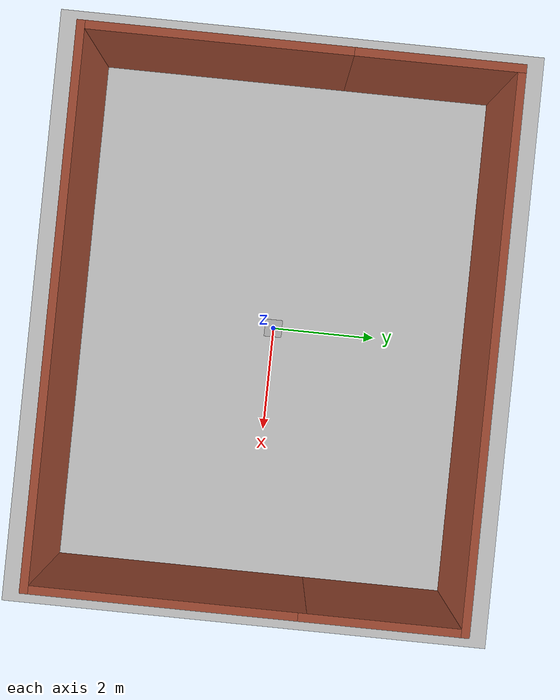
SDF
<sdf version="1.7">
 <world name="default">
  <light name="sun" type="directional">
   <pose>0 0 10 0 -0 0</pose>
   <diffuse>0.8 0.8 0.8 1</diffuse>
   <specular>0.2 0.2 0.2 1</specular>
   <attenuation>
    <range>1000</range>
    <constant>0.9</constant>
    <linear>0.01</linear>
    <quadratic>0.001</quadratic>
   </attenuation>
   <direction>-0.5 0.1 -0.9</direction>
   <spot><inner_angle>0</inner_angle><outer_angle>0</outer_angle><falloff>0</falloff></spot>
  </light>
  <model name="ground_plane">
   <pose>0 0 0 0 -0 1.57</pose>
   <static>1</static>
   <link name="link">
    <collision name="collision">
     <geometry><plane><normal>0 0 1</normal><size>100 100</size></plane></geometry>
     <surface>
      <contact><collide_bitmask>65535</collide_bitmask></contact>
      <friction><ode><mu>100</mu><mu2>50</mu2></ode></friction>
     </surface>
    </collision>
    <visual name="visual">
     <cast_shadows>0</cast_shadows>
     <geometry><plane><normal>0 0 1</normal><size>100 100</size></plane></geometry>
     <material>
      <script><uri>file://media/materials/scripts/gazebo.material</uri><name>Gazebo/Grey</name></script>
     </material>
    </visual>
   </link>
  </model>
  <gravity>0 0 -9.8</gravity>
  <magnetic_field>6e-06 2.3e-05 -4.2e-05</magnetic_field>
  <atmosphere type="adiabatic"/>
  <physics type="ode">
   <max_step_size>0.001</max_step_size>
   <real_time_factor>1</real_time_factor>
   <real_time_update_rate>1000</real_time_update_rate>
  </physics>
  <scene><ambient>0.4 0.4 0.4 1</ambient><background>0.7 0.7 0.7 1</background><shadows>1</shadows></scene>
  <spherical_coordinates>
   <surface_model>EARTH_WGS84</surface_model>
   <latitude_deg>0</latitude_deg>
   <longitude_deg>0</longitude_deg>
   <elevation>0</elevation>
   <heading_deg>0</heading_deg>
  </spherical_coordinates>
  <model name="Puzzlebot_sennaria1">
   <pose>0.01457 -0.00183 0 0 -0 0</pose>
   <link name="Wall_10">
    <collision name="Wall_10_Collision">
     <geometry><box><size>3 0.15 2.5</size></box></geometry>
     <pose>0 0 1.25 0 -0 0</pose>
    </collision>
    <visual name="Wall_10_Visual">
     <pose>0 0 1.25 0 -0 0</pose>
     <geometry><box><size>3 0.15 2.5</size></box></geometry>
     <material>
      <script><uri>file://media/materials/scripts/gazebo.material</uri><name>Gazebo/Bricks</name></script>
      <ambient>1 1 1 1</ambient>
     </material>
     <meta><layer>0</layer></meta>
    </visual>
    <pose>-4.925 2.425 0 0 -0 1.5708</pose>
   </link>
   <link name="Wall_11">
    <collision name="Wall_11_Collision">
     <geometry><box><size>10 0.15 2.5</size></box></geometry>
     <pose>0 0 1.25 0 -0 0</pose>
    </collision>
    <visual name="Wall_11_Visual">
     <pose>0 0 1.25 0 -0 0</pose>
     <geometry><box><size>10 0.15 2.5</size></box></geometry>
     <material>
      <script><uri>file://media/materials/scripts/gazebo.material</uri><name>Gazebo/Bricks</name></script>
      <ambient>1 1 1 1</ambient>
     </material>
     <meta><layer>0</layer></meta>
    </visual>
    <pose>-0 3.85 0 0 -0 0</pose>
   </link>
   <link name="Wall_12">
    <collision name="Wall_12_Collision">
     <geometry><box><size>3 0.15 2.5</size></box></geometry>
     <pose>0 0 1.25 0 -0 0</pose>
    </collision>
    <visual name="Wall_12_Visual">
     <pose>0 0 1.25 0 -0 0</pose>
     <geometry><box><size>3 0.15 2.5</size></box></geometry>
     <material>
      <script><uri>file://media/materials/scripts/gazebo.material</uri><name>Gazebo/Bricks</name></script>
      <ambient>1 1 1 1</ambient>
     </material>
     <meta><layer>0</layer></meta>
    </visual>
    <pose>4.925 2.425 0 0 -0 -1.5708</pose>
   </link>
   <link name="Wall_14">
    <collision name="Wall_14_Collision">
     <geometry><box><size>10 0.15 2.5</size></box></geometry>
     <pose>0 0 1.25 0 -0 0</pose>
    </collision>
    <visual name="Wall_14_Visual">
     <pose>0 0 1.25 0 -0 0</pose>
     <geometry><box><size>10 0.15 2.5</size></box></geometry>
     <material>
      <script><uri>file://media/materials/scripts/gazebo.material</uri><name>Gazebo/Bricks</name></script>
      <ambient>1 1 1 1</ambient>
     </material>
     <meta><layer>0</layer></meta>
    </visual>
    <pose>-0 -3.85 0 0 -0 0</pose>
   </link>
   <link name="Wall_15">
    <collision name="Wall_15_Collision">
     <geometry><box><size>5 0.15 2.5</size></box></geometry>
     <pose>0 0 1.25 0 -0 0</pose>
    </collision>
    <visual name="Wall_15_Visual">
     <pose>0 0 1.25 0 -0 0</pose>
     <geometry><box><size>5 0.15 2.5</size></box></geometry>
     <material>
      <script><uri>file://media/materials/scripts/gazebo.material</uri><name>Gazebo/Bricks</name></script>
      <ambient>1 1 1 1</ambient>
     </material>
     <meta><layer>0</layer></meta>
    </visual>
    <pose>4.925 -1.425 0 0 -0 1.5708</pose>
   </link>
   <link name="Wall_3">
    <collision name="Wall_3_Collision">
     <geometry><box><size>5 0.15 2.5</size></box></geometry>
     <pose>0 0 1.25 0 -0 0</pose>
    </collision>
    <visual name="Wall_3_Visual">
     <pose>0 0 1.25 0 -0 0</pose>
     <geometry><box><size>5 0.15 2.5</size></box></geometry>
     <material>
      <script><uri>file://media/materials/scripts/gazebo.material</uri><name>Gazebo/Bricks</name></script>
      <ambient>1 1 1 1</ambient>
     </material>
     <meta><layer>0</layer></meta>
    </visual>
    <pose>-4.925 -1.425 0 0 -0 1.5708</pose>
   </link>
   <static>1</static>
  </model>
  <model name="aruco_1">
   <static>1</static>
   <link name="marker_1_link">
    <visual name="visual_marker_1">
     <cast_shadows>0</cast_shadows>
     <geometry><box><size>0.342453 0.342453 0.001</size></box></geometry>
     <material>
      <script>
       <uri>model://aruco_1/materials/scripts</uri>
       <uri>model://aruco_1/materials/textures</uri>
       <name>aruco/marker_1</name>
      </script>
     </material>
    </visual>
   </link>
  </model>
  <model name="aruco_2">
   <static>1</static>
   <link name="marker_2_link">
    <visual name="visual_marker_2">
     <cast_shadows>0</cast_shadows>
     <geometry><box><size>0.342453 0.342453 0.001</size></box></geometry>
     <material>
      <script>
       <uri>model://aruco_2/materials/scripts</uri>
       <uri>model://aruco_2/materials/textures</uri>
       <name>aruco/marker_2</name>
      </script>
     </material>
    </visual>
   </link>
  </model>
  <model name="aruco_3">
   <static>1</static>
   <link name="marker_3_link">
    <visual name="visual_marker_3">
     <cast_shadows>0</cast_shadows>
     <geometry><box><size>0.342453 0.342453 0.001</size></box></geometry>
     <material>
      <script>
       <uri>model://aruco_3/materials/scripts</uri>
       <uri>model://aruco_3/materials/textures</uri>
       <name>aruco/marker_3</name>
      </script>
     </material>
    </visual>
   </link>
  </model>
  <model name="aruco_4">
   <static>1</static>
   <link name="marker_4_link">
    <visual name="visual_marker_4">
     <cast_shadows>0</cast_shadows>
     <geometry><box><size>0.342453 0.342453 0.001</size></box></geometry>
     <material>
      <script>
       <uri>model://aruco_4/materials/scripts</uri>
       <uri>model://aruco_4/materials/textures</uri>
       <name>aruco/marker_4</name>
      </script>
     </material>
    </visual>
   </link>
  </model>
  <model name="aruco_5">
   <static>1</static>
   <link name="marker_5_link">
    <visual name="visual_marker_5">
     <cast_shadows>0</cast_shadows>
     <geometry><box><size>0.342453 0.342453 0.001</size></box></geometry>
     <material>
      <script>
       <uri>model://aruco_5/materials/scripts</uri>
       <uri>model://aruco_5/materials/textures</uri>
       <name>aruco/marker_5</name>
      </script>
     </material>
    </visual>
   </link>
  </model>
  <model name="aruco_6">
   <static>1</static>
   <link name="marker_6_link">
    <visual name="visual_marker_6">
     <cast_shadows>0</cast_shadows>
     <geometry><box><size>0.342453 0.342453 0.001</size></box></geometry>
     <material>
      <script>
       <uri>model://aruco_6/materials/scripts</uri>
       <uri>model://aruco_6/materials/textures</uri>
       <name>aruco/marker_6</name>
      </script>
     </material>
    </visual>
   </link>
  </model>
  <model name="aruco_7">
   <static>1</static>
   <link name="marker_7_link">
    <visual name="visual_marker_7">
     <cast_shadows>0</cast_shadows>
     <geometry><box><size>0.342453 0.342453 0.001</size></box></geometry>
     <material>
      <script>
       <uri>model://aruco_7/materials/scripts</uri>
       <uri>model://aruco_7/materials/textures</uri>
       <name>aruco/marker_7</name>
      </script>
     </material>
    </visual>
   </link>
  </model>
  <model name="aruco_8">
   <static>1</static>
   <link name="marker_8_link">
    <visual name="visual_marker_8">
     <cast_shadows>0</cast_shadows>
     <geometry><box><size>0.342453 0.342453 0.001</size></box></geometry>
     <material>
      <script>
       <uri>model://aruco_8/materials/scripts</uri>
       <uri>model://aruco_8/materials/textures</uri>
       <name>aruco/marker_8</name>
      </script>
     </material>
    </visual>
   </link>
  </model>
  <model name="aruco_9">
   <static>1</static>
   <link name="marker_9_link">
    <visual name="visual_marker_9">
     <cast_shadows>0</cast_shadows>
     <geometry><box><size>0.342453 0.342453 0.001</size></box></geometry>
     <material>
      <script>
       <uri>model://aruco_9/materials/scripts</uri>
       <uri>model://aruco_9/materials/textures</uri>
       <name>aruco/marker_9</name>
      </script>
     </material>
    </visual>
   </link>
  </model>
  <model name="aruco_10">
   <static>1</static>
   <link name="marker_10_link">
    <visual name="visual_marker_10">
     <cast_shadows>0</cast_shadows>
     <geometry><box><size>0.342453 0.342453 0.001</size></box></geometry>
     <material>
      <script>
       <uri>model://aruco_10/materials/scripts</uri>
       <uri>model://aruco_10/materials/textures</uri>
       <name>aruco/marker_10</name>
      </script>
     </material>
    </visual>
   </link>
  </model>
  <model name="aruco_11">
   <static>1</static>
   <link name="marker_11_link">
    <visual name="visual_marker_11">
     <cast_shadows>0</cast_shadows>
     <geometry><box><size>0.342453 0.342453 0.001</size></box></geometry>
     <material>
      <script>
       <uri>model://aruco_11/materials/scripts</uri>
       <uri>model://aruco_11/materials/textures</uri>
       <name>aruco/marker_11</name>
      </script>
     </material>
    </visual>
   </link>
  </model>
  <model name="aruco_12">
   <static>1</static>
   <link name="marker_12_link">
    <visual name="visual_marker_12">
     <cast_shadows>0</cast_shadows>
     <geometry><box><size>0.342453 0.342453 0.001</size></box></geometry>
     <material>
      <script>
       <uri>model://aruco_12/materials/scripts</uri>
       <uri>model://aruco_12/materials/textures</uri>
       <name>aruco/marker_12</name>
      </script>
     </material>
    </visual>
   </link>
  </model>
  <model name="aruco_13">
   <static>1</static>
   <link name="marker_13_link">
    <visual name="visual_marker_13">
     <cast_shadows>0</cast_shadows>
     <geometry><box><size>0.342453 0.342453 0.001</size></box></geometry>
     <material>
      <script>
       <uri>model://aruco_13/materials/scripts</uri>
       <uri>model://aruco_13/materials/textures</uri>
       <name>aruco/marker_13</name>
      </script>
     </material>
    </visual>
   </link>
  </model>
  <model name="aruco_14">
   <static>1</static>
   <link name="marker_14_link">
    <visual name="visual_marker_14">
     <cast_shadows>0</cast_shadows>
     <geometry><box><size>0.342453 0.342453 0.001</size></box></geometry>
     <material>
      <script>
       <uri>model://aruco_14/materials/scripts</uri>
       <uri>model://aruco_14/materials/textures</uri>
       <name>aruco/marker_14</name>
      </script>
     </material>
    </visual>
   </link>
  </model>
  <model name="aruco_15">
   <static>1</static>
   <link name="marker_15_link">
    <visual name="visual_marker_15">
     <cast_shadows>0</cast_shadows>
     <geometry><box><size>0.342453 0.342453 0.001</size></box></geometry>
     <material>
      <script>
       <uri>model://aruco_15/materials/scripts</uri>
       <uri>model://aruco_15/materials/textures</uri>
       <name>aruco/marker_15</name>
      </script>
     </material>
    </visual>
   </link>
  </model>
  <model name="aruco_16">
   <static>1</static>
   <link name="marker_16_link">
    <visual name="visual_marker_16">
     <cast_shadows>0</cast_shadows>
     <geometry><box><size>0.342453 0.342453 0.001</size></box></geometry>
     <material>
      <script>
       <uri>model://aruco_16/materials/scripts</uri>
       <uri>model://aruco_16/materials/textures</uri>
       <name>aruco/marker_16</name>
      </script>
     </material>
    </visual>
   </link>
  </model>
  <model name="aruco_17">
   <static>1</static>
   <link name="marker_17_link">
    <visual name="visual_marker_17">
     <cast_shadows>0</cast_shadows>
     <geometry><box><size>0.342453 0.342453 0.001</size></box></geometry>
     <material>
      <script>
       <uri>model://aruco_17/materials/scripts</uri>
       <uri>model://aruco_17/materials/textures</uri>
       <name>aruco/marker_17</name>
      </script>
     </material>
    </visual>
   </link>
  </model>
  <model name="aruco_18">
   <static>1</static>
   <link name="marker_18_link">
    <visual name="visual_marker_18">
     <cast_shadows>0</cast_shadows>
     <geometry><box><size>0.342453 0.342453 0.001</size></box></geometry>
     <material>
      <script>
       <uri>model://aruco_18/materials/scripts</uri>
       <uri>model://aruco_18/materials/textures</uri>
       <name>aruco/marker_18</name>
      </script>
     </material>
    </visual>
   </link>
  </model>
  <model name="aruco_19">
   <static>1</static>
   <link name="marker_19_link">
    <visual name="visual_marker_19">
     <cast_shadows>0</cast_shadows>
     <geometry><box><size>0.342453 0.342453 0.001</size></box></geometry>
     <material>
      <script>
       <uri>model://aruco_19/materials/scripts</uri>
       <uri>model://aruco_19/materials/textures</uri>
       <name>aruco/marker_19</name>
      </script>
     </material>
    </visual>
   </link>
  </model>
  <model name="aruco_20">
   <static>1</static>
   <link name="marker_20_link">
    <visual name="visual_marker_20">
     <cast_shadows>0</cast_shadows>
     <geometry><box><size>0.342453 0.342453 0.001</size></box></geometry>
     <material>
      <script>
       <uri>model://aruco_20/materials/scripts</uri>
       <uri>model://aruco_20/materials/textures</uri>
       <name>aruco/marker_20</name>
      </script>
     </material>
    </visual>
   </link>
  </model>
  <model name="aruco_21">
   <static>1</static>
   <link name="marker_21_link">
    <visual name="visual_marker_21">
     <cast_shadows>0</cast_shadows>
     <geometry><box><size>0.342453 0.342453 0.001</size></box></geometry>
     <material>
      <script>
       <uri>model://aruco_21/materials/scripts</uri>
       <uri>model://aruco_21/materials/textures</uri>
       <name>aruco/marker_21</name>
      </script>
     </material>
    </visual>
   </link>
  </model>
  <model name="aruco_22">
   <static>1</static>
   <link name="marker_22_link">
    <visual name="visual_marker_22">
     <cast_shadows>0</cast_shadows>
     <geometry><box><size>0.342453 0.342453 0.001</size></box></geometry>
     <material>
      <script>
       <uri>model://aruco_22/materials/scripts</uri>
       <uri>model://aruco_22/materials/textures</uri>
       <name>aruco/marker_22</name>
      </script>
     </material>
    </visual>
   </link>
  </model>
  <model name="aruco_23">
   <static>1</static>
   <link name="marker_23_link">
    <visual name="visual_marker_23">
     <cast_shadows>0</cast_shadows>
     <geometry><box><size>0.342453 0.342453 0.001</size></box></geometry>
     <material>
      <script>
       <uri>model://aruco_23/materials/scripts</uri>
       <uri>model://aruco_23/materials/textures</uri>
       <name>aruco/marker_23</name>
      </script>
     </material>
    </visual>
   </link>
  </model>
  <model name="aruco_24">
   <static>1</static>
   <link name="marker_24_link">
    <visual name="visual_marker_24">
     <cast_shadows>0</cast_shadows>
     <geometry><box><size>0.342453 0.342453 0.001</size></box></geometry>
     <material>
      <script>
       <uri>model://aruco_24/materials/scripts</uri>
       <uri>model://aruco_24/materials/textures</uri>
       <name>aruco/marker_24</name>
      </script>
     </material>
    </visual>
   </link>
  </model>
  <model name="aruco_25">
   <static>1</static>
   <link name="marker_25_link">
    <visual name="visual_marker_25">
     <cast_shadows>0</cast_shadows>
     <geometry><box><size>0.342453 0.342453 0.001</size></box></geometry>
     <material>
      <script>
       <uri>model://aruco_25/materials/scripts</uri>
       <uri>model://aruco_25/materials/textures</uri>
       <name>aruco/marker_25</name>
      </script>
     </material>
    </visual>
   </link>
  </model>
  <model name="aruco_26">
   <static>1</static>
   <link name="marker_26_link">
    <visual name="visual_marker_26">
     <cast_shadows>0</cast_shadows>
     <geometry><box><size>0.342453 0.342453 0.001</size></box></geometry>
     <material>
      <script>
       <uri>model://aruco_26/materials/scripts</uri>
       <uri>model://aruco_26/materials/textures</uri>
       <name>aruco/marker_26</name>
      </script>
     </material>
    </visual>
   </link>
  </model>
  <model name="aruco_27">
   <static>1</static>
   <link name="marker_27_link">
    <visual name="visual_marker_27">
     <cast_shadows>0</cast_shadows>
     <geometry><box><size>0.342453 0.342453 0.001</size></box></geometry>
     <material>
      <script>
       <uri>model://aruco_27/materials/scripts</uri>
       <uri>model://aruco_27/materials/textures</uri>
       <name>aruco/marker_27</name>
      </script>
     </material>
    </visual>
   </link>
  </model>
  <model name="aruco_28">
   <static>1</static>
   <link name="marker_28_link">
    <visual name="visual_marker_28">
     <cast_shadows>0</cast_shadows>
     <geometry><box><size>0.342453 0.342453 0.001</size></box></geometry>
     <material>
      <script>
       <uri>model://aruco_28/materials/scripts</uri>
       <uri>model://aruco_28/materials/textures</uri>
       <name>aruco/marker_28</name>
      </script>
     </material>
    </visual>
   </link>
  </model>
  <model name="aruco_29">
   <static>1</static>
   <link name="marker_29_link">
    <visual name="visual_marker_29">
     <cast_shadows>0</cast_shadows>
     <geometry><box><size>0.342453 0.342453 0.001</size></box></geometry>
     <material>
      <script>
       <uri>model://aruco_29/materials/scripts</uri>
       <uri>model://aruco_29/materials/textures</uri>
       <name>aruco/marker_29</name>
      </script>
     </material>
    </visual>
   </link>
  </model>
  <model name="aruco_30">
   <static>1</static>
   <link name="marker_30_link">
    <visual name="visual_marker_30">
     <cast_shadows>0</cast_shadows>
     <geometry><box><size>0.342453 0.342453 0.001</size></box></geometry>
     <material>
      <script>
       <uri>model://aruco_30/materials/scripts</uri>
       <uri>model://aruco_30/materials/textures</uri>
       <name>aruco/marker_30</name>
      </script>
     </material>
    </visual>
   </link>
  </model>
 </world>
</sdf>
